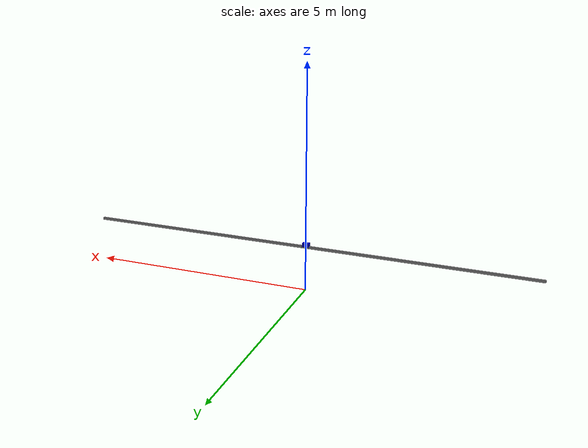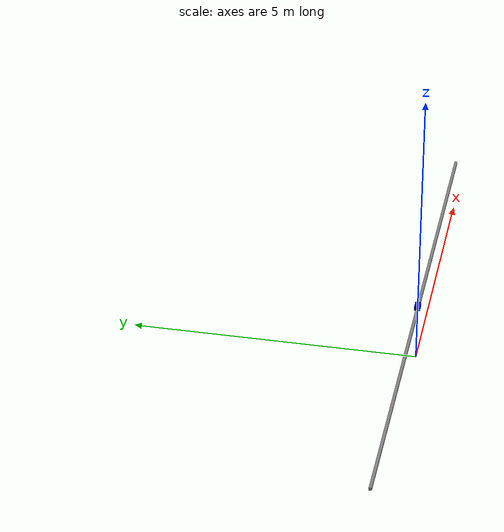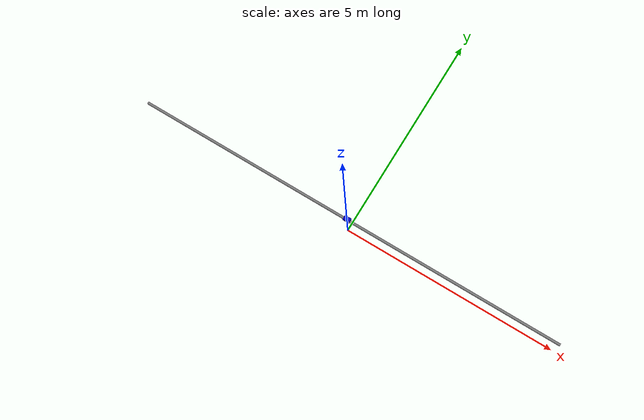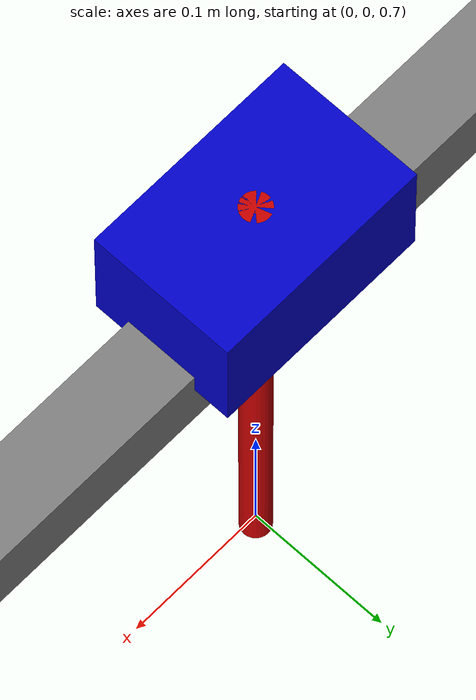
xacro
<?xml version="1.0"?>
<robot xmlns:xacro="http://www.ros.org/wiki/xacro" name="pendulum_swing">

  <xacro:property name="M" value="0.135"/>
  <xacro:property name="m" value="0.1"/>
  <xacro:property name="l" value="0.2"/>
  <xacro:property name="pole_length" value="0.4"/>
  <xacro:property name="pole_radius" value="0.01"/>
  <xacro:property name="cart_size_x" value="0.15"/>
  <xacro:property name="cart_size_y" value="0.1"/>
  <xacro:property name="cart_size_z" value="0.08"/>
  <xacro:property name="cart_position_limit" value="5.0"/>
  <xacro:property name="cart_max_velocity" value="10.0"/>
  <xacro:property name="cart_effort_limit" value="50.0"/>

  <!-- 惯性宏 -->
  <xacro:macro name="box_inertia" params="m x y z">
    <inertia ixx="${m*(y*y+z*z)/12}" ixy="0" ixz="0"
             iyy="${m*(x*x+z*z)/12}" iyz="0"
             izz="${m*(x*x+y*y)/12}"/>
  </xacro:macro>

  <xacro:macro name="cylinder_inertia" params="m r h">
    <inertia ixx="${m*(3*r*r+h*h)/12}" ixy="0" ixz="0"
             iyy="${m*(3*r*r+h*h)/12}" iyz="0"
             izz="${m*r*r/2}"/>
  </xacro:macro>

  <!-- World Link -->
  <link name="world"/>

  <!-- Base Link -->
  <link name="base_link"/>

  <joint name="world_to_base" type="fixed">
    <parent link="world"/>
    <child link="base_link"/>
    <origin xyz="0 0 0" rpy="0 0 0"/>
  </joint>

  <!-- Rail Link - 导轨 -->
  <link name="rail">
    <visual>
      <geometry>
        <box size="10.0 0.05 0.05"/>
      </geometry>
      <material name="gray">
        <color rgba="0.5 0.5 0.5 1.0"/>
      </material>
    </visual>
    <collision>
      <geometry>
        <box size="10.0 0.05 0.05"/>
      </geometry>
    </collision>
    <inertial>
      <mass value="1.0"/>
      <xacro:box_inertia m="1.0" x="10.0" y="0.05" z="0.05"/>
    </inertial>
  </link>

  <joint name="base_to_rail" type="fixed">
    <parent link="base_link"/>
    <child link="rail"/>
    <origin xyz="0 0 1.0" rpy="0 0 0"/>
  </joint>

  <!-- Cart Link - 简化小车 -->
  <link name="cart">
    <visual>
      <geometry>
        <box size="${cart_size_x} ${cart_size_y} ${cart_size_z}"/>
      </geometry>
      <material name="blue">
        <color rgba="0.0 0.0 0.8 1.0"/>
      </material>
    </visual>
    <collision>
      <geometry>
        <box size="${cart_size_x} ${cart_size_y} ${cart_size_z}"/>
      </geometry>
    </collision>
    <inertial>
      <mass value="${M}"/>
      <origin xyz="0 0 0"/>
      <xacro:box_inertia m="${M}" x="${cart_size_x}" y="${cart_size_y}" z="${cart_size_z}"/>
    </inertial>
  </link>

  <joint name="cart_joint" type="prismatic">
    <parent link="rail"/>
    <child link="cart"/>
    <origin xyz="0 0 0.05" rpy="0 0 0"/>
    <axis xyz="1 0 0"/>
    <limit lower="${-cart_position_limit}"
           upper="${cart_position_limit}"
           velocity="${cart_max_velocity}"
           effort="${cart_effort_limit}"/>
    <dynamics damping="0.2" friction="0.01"/>
  </joint>

  <!-- Pole Link - 摆杆 -->
  <link name="pole">
    <visual>
      <origin xyz="0 0 -${pole_length/2.0}" rpy="0 0 0"/>
      <geometry>
        <cylinder radius="${pole_radius}" length="${pole_length}"/>
      </geometry>
      <material name="red">
        <color rgba="0.8 0.0 0.0 1.0"/>
      </material>
    </visual>
    <collision>
      <origin xyz="0 0 -${pole_length/2.0}" rpy="0 0 0"/>
      <geometry>
        <cylinder radius="${pole_radius}" length="${pole_length}"/>
      </geometry>
    </collision>
    <inertial>
      <origin xyz="0 0 -${pole_length/2.0}" rpy="0 0 0"/>
      <mass value="${m}"/>
      <xacro:cylinder_inertia m="${m}" r="${pole_radius}" h="${pole_length}"/>
    </inertial>
  </link>

  <joint name="pole_joint" type="continuous">
    <parent link="cart"/>
    <child link="pole"/>
    <origin xyz="0 0 ${cart_size_z/2.0}" rpy="0 0 0"/>
    <axis xyz="0 1 0"/>
    <dynamics damping="0.00007892" friction="0.001"/>
  </joint>

  <!-- Gazebo 插件 (Gazebo Sim / Ignition) -->
  <gazebo>
    <plugin filename="gz_ros2_control-system" name="gz_ros2_control::GazeboSimROS2ControlPlugin">
      <robot_param>robot_description</robot_param>
      <robot_param_node>robot_state_publisher</robot_param_node>
      <parameters>$(find pendulum_swing)/config/pendulum_controllers.yaml</parameters>
    </plugin>
  </gazebo>

  <!-- ros2_control 配置 -->
  <ros2_control name="PendulumSystem" type="system">
    <hardware>
      <plugin>gz_ros2_control/GazeboSimSystem</plugin>
    </hardware>

    <joint name="cart_joint">
      <command_interface name="effort">
        <param name="min">-${cart_effort_limit}</param>
        <param name="max">${cart_effort_limit}</param>
      </command_interface>
      <state_interface name="position">
        <param name="initial_value">0.0</param>
      </state_interface>
      <state_interface name="velocity">
        <param name="initial_value">0.0</param>
      </state_interface>
    </joint>

    <joint name="pole_joint">
      <state_interface name="position">
        <param name="initial_value">0.0</param>
      </state_interface>
      <state_interface name="velocity">
        <param name="initial_value">0.0</param>
      </state_interface>
    </joint>
  </ros2_control>

</robot>
